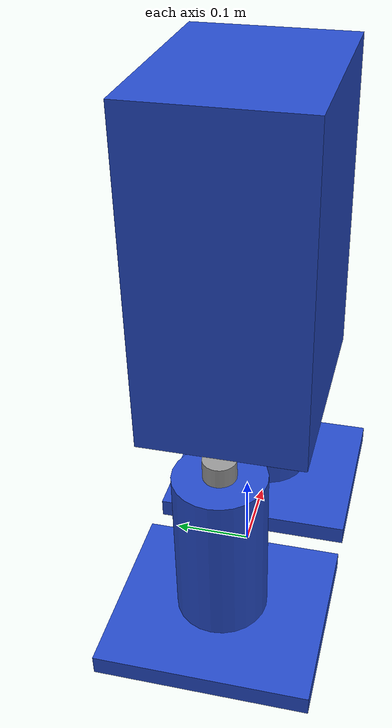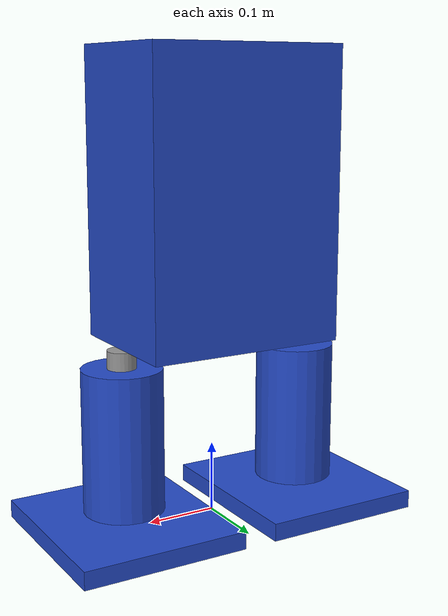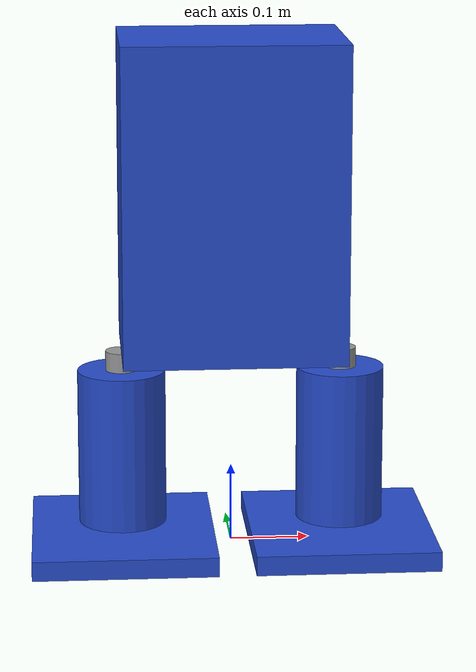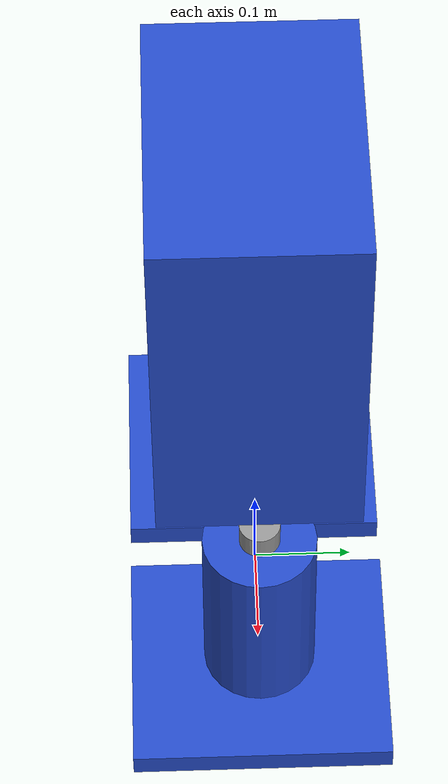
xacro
<?xml version="1.0"?>
<!-- Xacro allows to use macros and properties to generate URDF files -->

<robot xmlns:xacro="http://www.ros.org/wiki/xacro">

    <xacro:property name="torso_height" value="0.4" />
    <xacro:property name="torso_length" value="${0.7 * torso_height}" />
    <xacro:property name="torso_width" value="${0.5 * torso_height}" />
    <xacro:property name="pivot_radius" value="${0.05 * torso_height}" />
    <xacro:property name="pivot_length" value="${torso_width/8}" />
    <xacro:property name="leg_lenght" value="${torso_height / 2}" />
    <xacro:property name="leg_hip_offset" value="${-(leg_lenght / 2)}" />
    <xacro:property name="leg_ankle_offset" value="${-leg_lenght-pivot_radius*0.5}" />
    <xacro:property name="foot_height" value="${pivot_radius*1.25}" />
    <xacro:property name="foot_ankle_offset" value="${pivot_radius-(foot_height/2)}" />

    <!-- for wheels collisions use spheres instead of cylinders -->

    <link name="base_footprint" />

    <link name="torso_link">
        <visual>
            <geometry>
                <box size="${torso_length} ${torso_width} ${torso_height}" />
            </geometry>
            <origin xyz="0 0 ${torso_height / 2.0}" rpy="0 0 0" />
            <material name="blue" />
        </visual>
        <collision>
            <geometry>
                <box size="${torso_length} ${torso_width} ${torso_height}" />
            </geometry>
            <origin xyz="0 0 ${torso_height / 2.0}" rpy="0 0 0" />
        </collision>
        <xacro:box_inertia mass="2.0" height="${torso_height}" lenght="${torso_length}"
            width="${torso_width}" xyz="0 0 ${torso_height / 2.0}" rpy="0 0 0" />
    </link>

    <xacro:macro name="pivot_link" params="prefix xyz rpy">
        <link name="${prefix}_link">
            <visual>
                <geometry>
                    <cylinder radius="${pivot_radius}" length="${pivot_length}" />
                </geometry>
                <origin xyz="${xyz}" rpy="${rpy}" />
                <material name="grey" />
            </visual>
        </link>
    </xacro:macro>

    <xacro:pivot_link prefix="right_hip" xyz="0 0 -${pivot_length/2}" rpy="0 0 0" />
    <xacro:pivot_link prefix="left_hip" xyz="0 0 -${pivot_length/2}" rpy="0 0 0" />
    <xacro:pivot_link prefix="right_ankle" xyz="0 0 0" rpy="${pi/2.0} 0 0" />
    <xacro:pivot_link prefix="left_ankle" xyz="0 0 0" rpy="${pi/2.0} 0 0" />

    <link name="right_leg_link">
        <visual>
            <geometry>
                <cylinder radius="${torso_length*0.2}" length="${leg_lenght}" />
            </geometry>
            <origin xyz="0 0 ${leg_hip_offset}" rpy="0 0 0" />
            <material name="blue" />
        </visual>
        <collision>
            <geometry>
                <cylinder radius="${torso_length*0.2}" length="${leg_lenght}" />
            </geometry>
            <origin xyz="0 0 ${leg_hip_offset}" rpy="0 0 0" />
        </collision>
        <xacro:cylinder_inertia mass="1.0" radius="${torso_length*0.2}" height="${leg_lenght}"
            xyz="0 0 ${leg_hip_offset}" rpy="0 0 0" />
    </link>

    <link name="left_leg_link">
        <visual>
            <geometry>
                <cylinder radius="${torso_length*0.2}" length="${leg_lenght}" />
            </geometry>
            <origin xyz="0 0 ${leg_hip_offset}" rpy="0 0 0" />
            <material name="blue" />
        </visual>
        <collision>
            <geometry>
                <cylinder radius="${torso_length*0.2}" length="${leg_lenght}" />
            </geometry>
            <origin xyz="0 0 ${leg_hip_offset}" rpy="0 0 0" />
        </collision>
        <xacro:cylinder_inertia mass="1.0" radius="${torso_length*0.2}" height="${leg_lenght}"
            xyz="0 0 ${leg_hip_offset}" rpy="0 0 0" />
    </link>

    <link name="right_foot_link">
        <visual>
            <geometry>
                <box size="${torso_length*0.5/0.6} ${torso_width*1.3} ${foot_height}" />
            </geometry>
            <origin xyz="0 0 ${foot_ankle_offset}" rpy="0 0 0" />
            <material name="blue" />
        </visual>
        <collision>
            <geometry>
                <box size="${torso_length*0.5/0.6} ${torso_width*1.3} ${foot_height}" />
            </geometry>
            <origin xyz="0 0 ${foot_ankle_offset}" rpy="0 0 0" />
        </collision>
        <xacro:box_inertia mass="1.0" lenght="${torso_length*0.5/0.7}" width="${torso_width*1.1}"
            height="${foot_height}" xyz="0 0 ${foot_ankle_offset}" rpy="0 0 0" />
    </link>

    <link name="left_foot_link">
        <visual>
            <geometry>
                <box size="${torso_length*0.5/0.6} ${torso_width*1.3} ${foot_height}" />
            </geometry>
            <origin xyz="0 0 ${foot_ankle_offset}" rpy="0 0 0" />
            <material name="blue" />
        </visual>
        <collision>
            <geometry>
                <box size="${torso_length*0.5/0.6} ${torso_width*1.3} ${foot_height}" />
            </geometry>
            <origin xyz="0 0 ${foot_ankle_offset}" rpy="0 0 0" />
        </collision>
        <xacro:box_inertia mass="1.0" lenght="${torso_length*0.5/0.7}" width="${torso_width*1.1}"
            height="${foot_height}" xyz="0 0 ${foot_ankle_offset}" rpy="0 0 0" />
    </link>

    <joint name="base_joint" type="fixed">
        <parent link="base_footprint" />
        <child link="torso_link" />
        <origin xyz="0 0 ${leg_lenght+foot_height+1.5*pivot_radius}" rpy="0 0 0" />
    </joint>

    <joint name="right_hip_joint" type="revolute">
        <parent link="torso_link" />
        <child link="right_hip_link" />
        <origin xyz="${torso_length/2} 0 0" rpy="0 0 0" />
        <axis xyz="0 0 1" />
        <limit lower="${-pi/2.0}" upper="${pi/2.0}" velocity="100" effort="100" />
        <dynamics damping="0.5" friction="0.3" />
    </joint>

    <joint name="left_hip_joint" type="revolute">
        <parent link="torso_link" />
        <child link="left_hip_link" />
        <origin xyz="${-torso_length/2} 0 0" rpy="0 0 0" />
        <axis xyz="0 0 -1" />
        <limit lower="${-pi/2.0}" upper="${pi/2.0}" velocity="100" effort="100" />
        <dynamics damping="0.5" friction="0.3" />
    </joint>

    <joint name="right_leg_joint" type="fixed">
        <parent link="right_hip_link" />
        <child link="right_leg_link" />
        <origin xyz="0 0 -${pivot_length}" rpy="0 0 0" />
    </joint>

    <joint name="left_leg_joint" type="fixed">
        <parent link="left_hip_link" />
        <child link="left_leg_link" />
        <origin xyz="0 0 -${pivot_length}" rpy="0 0 0" />
    </joint>

    <joint name="right_ankle_joint" type="revolute">
        <parent link="right_leg_link" />
        <child link="right_ankle_link" />
        <origin xyz="0 0 ${leg_ankle_offset}" rpy="0 0 0" />
        <axis xyz="0 1 0" />
        <limit lower="-0.8" upper="0.8" velocity="100" effort="100" />
        <dynamics damping="0.5" friction="0.3" />
    </joint>

    <joint name="left_ankle_joint" type="revolute">
        <parent link="left_leg_link" />
        <child link="left_ankle_link" />
        <origin xyz="0 0 ${leg_ankle_offset}" rpy="0 0 0" />
        <axis xyz="0 -1 0" />
        <limit lower="-0.8" upper="0.8" velocity="100" effort="100" />
        <dynamics damping="0.5" friction="0.3" />
    </joint>

    <joint name="right_foot_joint" type="fixed">
        <parent link="right_ankle_link" />
        <child link="right_foot_link" />
        <origin xyz="0 0 -${pivot_radius}" rpy="0 0 0" />
    </joint>

    <joint name="left_foot_joint" type="fixed">
        <parent link="left_ankle_link" />
        <child link="left_foot_link" />
        <origin xyz="0 0 -${pivot_radius}" rpy="0 0 0" />
    </joint>

</robot>
